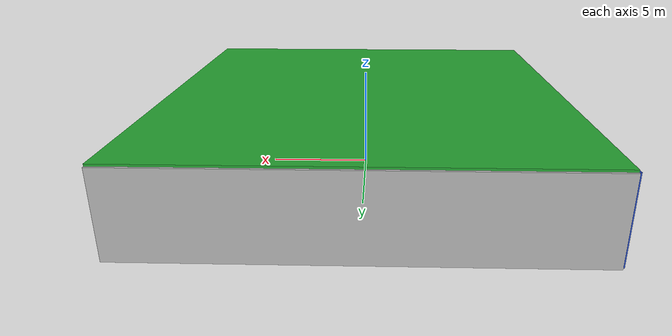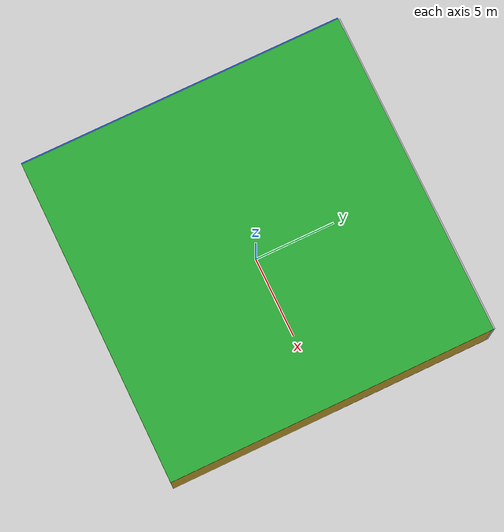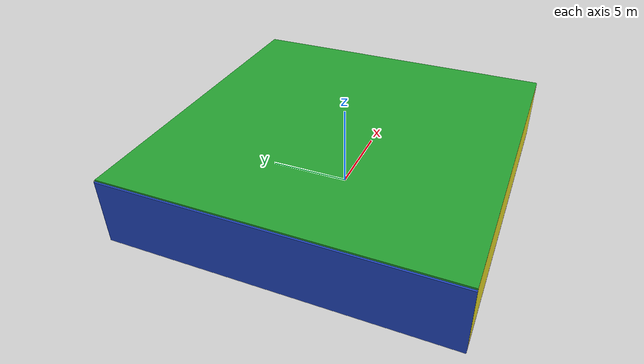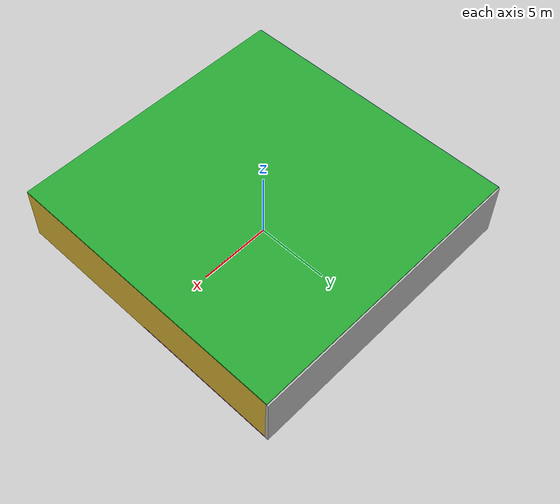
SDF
<sdf version="1.4">
 <world name="default">
  <physics type="ode">
   <max_step_size>0.001</max_step_size>
   <real_time_factor>1</real_time_factor>
   <real_time_update_rate>1000</real_time_update_rate>
   <gravity>0 0 -9.8</gravity>
  </physics>
  <scene><ambient>0.4 0.4 0.4 1</ambient><background>0.7 0.7 0.7 1</background><shadows>1</shadows></scene>
  <model name="Surrounding">
   <static>1</static>
   <link name="Ceiling">
    <collision name="Ceiling_Collision"><geometry><box><size>20 20 0.1</size></box></geometry></collision>
    <visual name="Ceiling_Visual">
     <geometry><box><size>20 20 0.1</size></box></geometry>
     <material>
      <script><uri>file://media/materials/scripts/gazebo.material</uri><name>Gazebo/Green</name></script>
     </material>
    </visual>
    <pose>0 0 4.05 0 0 0</pose>
   </link>
   <link name="Wall_South">
    <collision name="Wall_South_Collision">
     <geometry><box><size>20 0 4</size></box></geometry>
     <pose>0 0 2 0 -0 0</pose>
    </collision>
    <visual name="Wall_South_Visual">
     <pose>0 0 2 0 -0 0</pose>
     <geometry><box><size>20 0 4</size></box></geometry>
     <material>
      <script><uri>file://media/materials/scripts/gazebo.material</uri><name>Gazebo/Yellow</name></script>
     </material>
    </visual>
    <velocity_decay><linear>0</linear><angular>0</angular></velocity_decay>
    <pose>0 -10 0 0 -0 0</pose>
   </link>
   <link name="Wall_East">
    <collision name="Wall_21_Collision">
     <geometry><box><size>20 0 4</size></box></geometry>
     <pose>0 0 2 0 -0 0</pose>
    </collision>
    <visual name="Wall_21_Visual">
     <pose>0 0 2 0 -0 0</pose>
     <geometry><box><size>20 0 4</size></box></geometry>
     <material>
      <script><uri>file://media/materials/scripts/gazebo.material</uri><name>Gazebo/Gold</name></script>
     </material>
    </visual>
    <velocity_decay><linear>0</linear><angular>0</angular></velocity_decay>
    <pose>10 0 0 0 -0 1.5708</pose>
   </link>
   <link name="Wall_North">
    <collision name="Wall_22_Collision">
     <geometry><box><size>20 0.2 4</size></box></geometry>
     <pose>0 0 2 0 -0 0</pose>
    </collision>
    <visual name="Wall_22_Visual">
     <pose>0 0 2 0 -0 0</pose>
     <geometry><box><size>20 0.2 4</size></box></geometry>
     <material>
      <script><uri>file://media/materials/scripts/gazebo.material</uri><name>Gazebo/LightOn</name></script>
     </material>
    </visual>
    <velocity_decay><linear>0</linear><angular>0</angular></velocity_decay>
    <pose>0 10 0 0 -0 0</pose>
   </link>
   <link name="Wall_West">
    <collision name="Wall_23_Collision">
     <geometry><box><size>20 0.2 4</size></box></geometry>
     <pose>0 0 2 0 -0 0</pose>
    </collision>
    <visual name="Wall_23_Visual">
     <pose>0 0 2 0 -0 0</pose>
     <geometry><box><size>20 0.2 4</size></box></geometry>
     <material>
      <script><uri>file://media/materials/scripts/gazebo.material</uri><name>Gazebo/BlueGlow</name></script>
     </material>
    </visual>
    <velocity_decay><linear>0</linear><angular>0</angular></velocity_decay>
    <pose>-10 0 0 0 0 -1.5708</pose>
   </link>
   <link name="Ground_link">
    <collision name="collision">
     <pose>0 0 .05 0 -0 0</pose>
     <geometry><box><size>20 20 0.1</size></box></geometry>
    </collision>
    <visual name="visual">
     <pose>0 0 .05 0 -0 0</pose>
     <geometry><box><size>20 20 0.1</size></box></geometry>
     <material>
      <script><uri>file://media/materials/scripts/gazebo.material</uri><name>Gazebo/Purple</name></script>
     </material>
    </visual>
   </link>
   <static>1</static>
  </model>
  <spherical_coordinates>
   <surface_model>EARTH_WGS84</surface_model>
   <latitude_deg>0</latitude_deg>
   <longitude_deg>0</longitude_deg>
   <elevation>0</elevation>
   <heading_deg>0</heading_deg>
  </spherical_coordinates>
  <light name="lightball_0" type="diffuse">
   <diffuse>0.8 0.8 0.8 1</diffuse>
   <specular>0.2 0.2 0.2 1</specular>
   <attenuation>
    <range>100</range>
    <constant>0.7</constant>
    <linear>0.01</linear>
    <quadratic>0.001</quadratic>
   </attenuation>
   <direction>-0.5 0.1 -0.9</direction>
   <pose>-9.42128416644 6.85312100047 2.89546449351 0 0 0</pose>
  </light>
  <light name="lightball_1" type="diffuse">
   <diffuse>0.8 0.8 0.8 1</diffuse>
   <specular>0.2 0.2 0.2 1</specular>
   <attenuation>
    <range>100</range>
    <constant>0.7</constant>
    <linear>0.01</linear>
    <quadratic>0.001</quadratic>
   </attenuation>
   <direction>-0.5 0.1 -0.9</direction>
   <pose>9.87523152154 -3.50897172534 2.06536195042 0 0 0</pose>
  </light>
  <light name="lightball_2" type="diffuse">
   <diffuse>0.8 0.8 0.8 1</diffuse>
   <specular>0.2 0.2 0.2 1</specular>
   <attenuation>
    <range>100</range>
    <constant>0.7</constant>
    <linear>0.01</linear>
    <quadratic>0.001</quadratic>
   </attenuation>
   <direction>-0.5 0.1 -0.9</direction>
   <pose>8.57305784819 -1.35111481721 3.32366574903 0 0 0</pose>
  </light>
  <include>
   <uri>model://textured_shapes</uri>
   <pose>-5.67686310539 -0.87441606753 0 0 0 1.72708171037</pose>
  </include>
  <include><uri>model://cabinet</uri><pose>1.23572877414 -6.49508441341 0 0 0 1.7684983194</pose></include>
  <include><uri>model://cabinet</uri><pose>7.51459814992 8.00627812452 0 0 0 0.896232968615</pose></include>
 </world>
</sdf>

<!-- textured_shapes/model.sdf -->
<sdf version="1.6">
  <model name="textured_shapes">
    <pose>0 0 0.5 0 0 0</pose>
    <link name="box">
      <pose>0 -1.5 0 0 0 0</pose>
      <collision name="collision">
        <geometry>
          <box>
            <size>1 1 1</size>
          </box>
        </geometry>
      </collision>
      <visual name="visual">
        <geometry>
          <box>
            <size>1 1 1</size>
          </box>
        </geometry>
        <material>
          <script>
            <uri>model://../model_source/models/textured_shapes/materials/scripts</uri>
            <uri>model://../model_source/models/textured_shapes/materials/textures</uri>
            <name>TexturedShape/Squares</name>
          </script>
        </material>
      </visual>
    </link>
    <link name="sphere">
      <collision name="collision">
        <geometry>
          <sphere>
            <radius>0.5</radius>
          </sphere>
        </geometry>
      </collision>
      <visual name="visual">
        <geometry>
          <sphere>
            <radius>0.5</radius>
          </sphere>
        </geometry>
        <material>
          <script>
            <uri>model://../model_source/models/textured_shapes/materials/scripts</uri>
            <uri>model://../model_source/models/textured_shapes/materials/textures</uri>
            <name>TexturedShape/Squares</name>
          </script>
        </material>
      </visual>
    </link>
    <link name="cylinder">
      <pose>0 1.5 0 0 0 0</pose>
      <collision name="collision">
        <geometry>
          <cylinder>
            <radius>0.5</radius>
            <length>1</length>
          </cylinder>
        </geometry>
      </collision>
      <visual name="visual">
        <geometry>
          <cylinder>
            <radius>0.5</radius>
            <length>1</length>
          </cylinder>
        </geometry>
        <material>
          <script>
            <uri>model://../model_source/models/textured_shapes/materials/scripts</uri>
            <uri>model://../model_source/models/textured_shapes/materials/textures</uri>
            <name>TexturedShape/Squares</name>
          </script>
        </material>
      </visual>
    </link>
  </model>
</sdf>

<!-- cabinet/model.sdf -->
<sdf version="1.5">
  <model name="cabinet">
    <static>true</static>
    <link name="cabinet_bottom_plate">
      <inertial>
        <pose>0 0 -1 0 0 0</pose>
        <inertia>
          <ixx>2.050000</ixx>
          <ixy>0</ixy>
          <ixz>0</ixz>
          <iyy>2.050000</iyy>
          <iyz>0</iyz>
          <izz>2.050000</izz>
        </inertia>
        <mass>25.000000</mass>
      </inertial>
      <collision name="cabinet_bottom_plate_geom">
        <pose>0 0 0.010000 0 0 0</pose>
        <geometry>
          <box>
            <size>0.450000 0.450000 0.020000</size>
          </box>
        </geometry>
      </collision>
      <visual name="cabinet_bottom_plate_geom_visual">
        <pose>0 0 0.010000 0 0 0</pose>
        <geometry>
          <box>
            <size>0.450000 0.450000 0.020000</size>
          </box>
        </geometry>
        <material>
          <script>
            <uri>model://media/materials/scripts/gazebo.material</uri>
            <name>Gazebo/Wood</name>
          </script>
        </material>
      </visual>
      <collision name="cabinet_bottom_plate_geom_cabinet_back_plate">
        <pose>0.235000 0 0.510000 0 0 0</pose>
        <geometry>
          <box>
            <size>0.020000 0.450000 1.020000</size>
          </box>
        </geometry>
      </collision>
      <visual name="cabinet_bottom_plate_geom_cabinet_back_plate_visual">
        <pose>0.235000 0 0.510000 0 0 0</pose>
        <geometry>
          <box>
            <size>0.020000 0.450000 1.020000</size>
          </box>
        </geometry>
        <material>
          <script>
            <uri>model://media/materials/scripts/gazebo.material</uri>
            <name>Gazebo/Wood</name>
          </script>
        </material>
      </visual>
      <collision name="cabinet_bottom_plate_geom_cabinet_left_plate">
        <pose>0 0.235000 0.510000 0 0 0</pose>
        <geometry>
          <box>
            <size>0.450000 0.020000 1.020000</size>
          </box>
        </geometry>
      </collision>
      <visual name="cabinet_bottom_plate_geom_cabinet_left_plate_visual">
        <pose>0 0.235000 0.510000 0 0 0</pose>
        <geometry>
          <box>
            <size>0.450000 0.020000 1.020000</size>
          </box>
        </geometry>
        <material>
          <script>
            <uri>model://media/materials/scripts/gazebo.material</uri>
            <name>Gazebo/Wood</name>
          </script>
        </material>
      </visual>
      <collision name="cabinet_bottom_plate_geom_cabinet_middle_plate">
        <pose>0 0 0.510000 0 0 0</pose>
        <geometry>
          <box>
            <size>0.450000 0.450000 0.020000</size>
          </box>
        </geometry>
      </collision>
      <visual name="cabinet_bottom_plate_geom_cabinet_middle_plate_visual">
        <pose>0 0 0.510000 0 0 0</pose>
        <geometry>
          <box>
            <size>0.450000 0.450000 0.020000</size>
          </box>
        </geometry>
        <material>
          <script>
            <uri>model://media/materials/scripts/gazebo.material</uri>
            <name>Gazebo/Wood</name>
          </script>
        </material>
      </visual>
      <collision name="cabinet_bottom_plate_geom_cabinet_right_plate">
        <pose>0 -0.235000 0.510000 0 0 0</pose>
        <geometry>
          <box>
            <size>0.450000 0.020000 1.020000</size>
          </box>
        </geometry>
      </collision>
      <visual name="cabinet_bottom_plate_geom_cabinet_right_plate_visual">
        <pose>0 -0.235000 0.510000 0 0 0</pose>
        <geometry>
          <box>
            <size>0.450000 0.020000 1.020000</size>
          </box>
        </geometry>
        <material>
          <script>
            <uri>model://media/materials/scripts/gazebo.material</uri>
            <name>Gazebo/Wood</name>
          </script>
        </material>
      </visual>
      <collision name="cabinet_bottom_plate_geom_cabinet_top_plate">
        <pose>0 0 1.010000 0 0 0</pose>
        <geometry>
          <box>
            <size>0.450000 0.450000 0.020000</size>
          </box>
        </geometry>
      </collision>
      <visual name="cabinet_bottom_plate_geom_cabinet_top_plate_visual">
        <pose>0 0 1.010000 0 0 0</pose>
        <geometry>
          <box>
            <size>0.450000 0.450000 0.020000</size>
          </box>
        </geometry>
        <material>
          <script>
            <uri>model://media/materials/scripts/gazebo.material</uri>
            <name>Gazebo/Wood</name>
          </script>
        </material>
      </visual>
    </link>
  </model>
</sdf>
